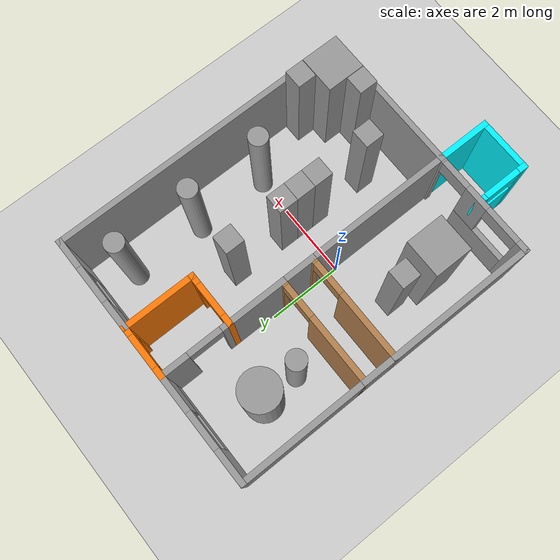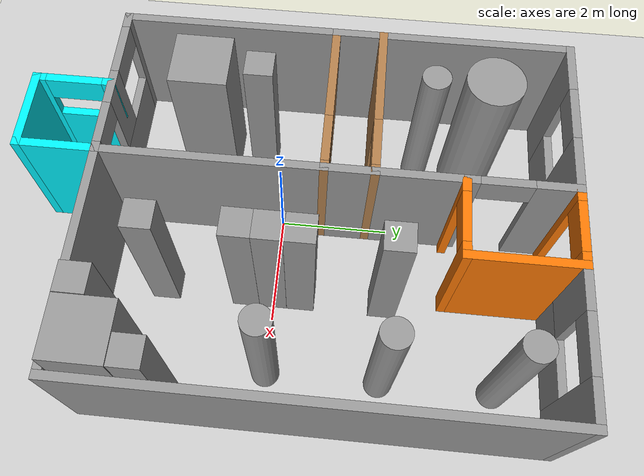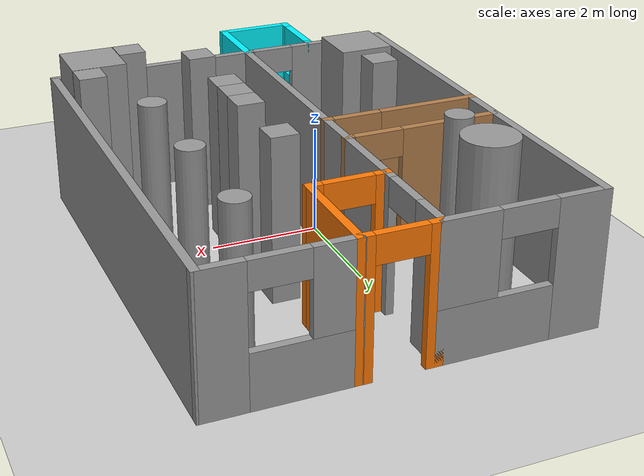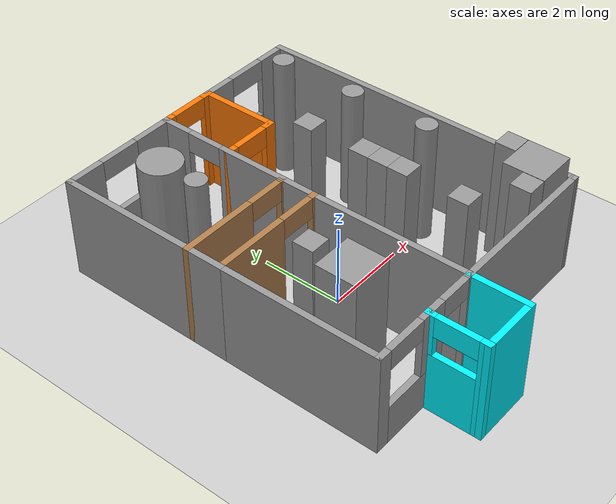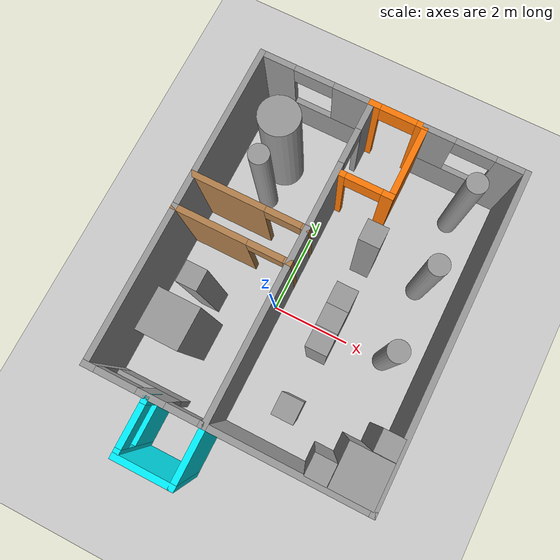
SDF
<sdf version="1.6">
 <world name="default">
  <plugin name="hello" filename="libhello.so"/>
  <light name="sun" type="directional">
   <pose>0 0 10 0 -0 0</pose>
   <diffuse>0.8 0.8 0.8 1</diffuse>
   <specular>0.2 0.2 0.2 1</specular>
   <attenuation>
    <range>1000</range>
    <constant>0.9</constant>
    <linear>0.01</linear>
    <quadratic>0.001</quadratic>
   </attenuation>
   <direction>-0.5 0.1 -0.9</direction>
  </light>
  <model name="ground_plane">
   <static>1</static>
   <link name="link">
    <collision name="collision">
     <geometry><plane><normal>0 0 1</normal><size>100 100</size></plane></geometry>
     <surface><friction><ode><mu>100</mu><mu2>50</mu2></ode></friction></surface>
    </collision>
    <visual name="visual">
     <cast_shadows>0</cast_shadows>
     <geometry><plane><normal>0 0 1</normal><size>100 100</size></plane></geometry>
     <material>
      <script><uri>file://media/materials/scripts/gazebo.material</uri><name>Gazebo/Grey</name></script>
     </material>
    </visual>
   </link>
  </model>
  <gravity>0 0 -9.8</gravity>
  <magnetic_field>6e-06 2.3e-05 -4.2e-05</magnetic_field>
  <atmosphere type="adiabatic"/>
  <physics name="default_physics" default="0" type="ode">
   <max_step_size>0.001</max_step_size>
   <real_time_factor>1</real_time_factor>
   <real_time_update_rate>1000</real_time_update_rate>
  </physics>
  <scene><ambient>0.4 0.4 0.4 1</ambient><background>0.7 0.7 0.7 1</background><shadows>1</shadows></scene>
  <spherical_coordinates>
   <surface_model>EARTH_WGS84</surface_model>
   <latitude_deg>0</latitude_deg>
   <longitude_deg>0</longitude_deg>
   <elevation>0</elevation>
   <heading_deg>0</heading_deg>
  </spherical_coordinates>
  <model name="cozyapato">
   <pose>0.612099 0.24558 0 0 -0 0</pose>
   <link name="Wall_100">
    <collision name="Wall_100_Collision">
     <geometry><box><size>1.5 0.15 2.5</size></box></geometry>
     <pose>0 0 1.25 0 -0 0</pose>
    </collision>
    <visual name="Wall_100_Visual">
     <pose>0 0 1.25 0 -0 0</pose>
     <geometry><box><size>1.5 0.15 2.5</size></box></geometry>
     <material>
      <script><uri>file://media/materials/scripts/gazebo.material</uri><name>Gazebo/Grey</name></script>
      <ambient>0 0.952941 1 1</ambient>
     </material>
     <meta><layer>0</layer></meta>
    </visual>
    <pose>-0.499933 -4.02501 0 0 0 -1.5708</pose>
   </link>
   <link name="Wall_101">
    <collision name="Wall_101_Collision">
     <geometry><box><size>1.5 0.15 2.5</size></box></geometry>
     <pose>0 0 1.25 0 -0 0</pose>
    </collision>
    <visual name="Wall_101_Visual">
     <pose>0 0 1.25 0 -0 0</pose>
     <geometry><box><size>1.5 0.15 2.5</size></box></geometry>
     <material>
      <script><uri>file://media/materials/scripts/gazebo.material</uri><name>Gazebo/Grey</name></script>
      <ambient>0 0.952941 1 1</ambient>
     </material>
     <meta><layer>0</layer></meta>
    </visual>
    <pose>-1.17493 -4.70001 0 0 -0 3.14159</pose>
   </link>
   <link name="Wall_102">
    <pose>-1.84993 -4.02501 0 0 -0 1.5708</pose>
    <visual name="Wall_102_Visual_0">
     <pose>-0.623422 0 1.25 0 -0 0</pose>
     <geometry><box><size>0.253156 0.15 2.5</size></box></geometry>
     <material>
      <script><uri>file://media/materials/scripts/gazebo.material</uri><name>Gazebo/Grey</name></script>
      <ambient>0 0.952941 1 1</ambient>
     </material>
     <meta><layer>0</layer></meta>
    </visual>
    <collision name="Wall_102_Collision_0">
     <geometry><box><size>0.253156 0.15 2.5</size></box></geometry>
     <pose>-0.623422 0 1.25 0 -0 0</pose>
    </collision>
    <visual name="Wall_102_Visual_1">
     <pose>0.126578 0 0.75 0 -0 0</pose>
     <geometry><box><size>1.24684 0.15 1.5</size></box></geometry>
     <material>
      <script><uri>file://media/materials/scripts/gazebo.material</uri><name>Gazebo/Grey</name></script>
      <ambient>0 0.952941 1 1</ambient>
     </material>
     <meta><layer>0</layer></meta>
    </visual>
    <collision name="Wall_102_Collision_1">
     <geometry><box><size>1.24684 0.15 1.5</size></box></geometry>
     <pose>0.126578 0 0.75 0 -0 0</pose>
    </collision>
    <visual name="Wall_102_Visual_2">
     <pose>0.626578 0 2 0 -0 0</pose>
     <geometry><box><size>0.246844 0.15 1</size></box></geometry>
     <material>
      <script><uri>file://media/materials/scripts/gazebo.material</uri><name>Gazebo/Grey</name></script>
      <ambient>0 0.952941 1 1</ambient>
     </material>
     <meta><layer>0</layer></meta>
    </visual>
    <collision name="Wall_102_Collision_2">
     <geometry><box><size>0.246844 0.15 1</size></box></geometry>
     <pose>0.626578 0 2 0 -0 0</pose>
    </collision>
    <visual name="Wall_102_Visual_3">
     <pose>0.003156 0 2.25 0 -0 0</pose>
     <geometry><box><size>1 0.15 0.5</size></box></geometry>
     <material>
      <script><uri>file://media/materials/scripts/gazebo.material</uri><name>Gazebo/Grey</name></script>
      <ambient>0 0.952941 1 1</ambient>
     </material>
     <meta><layer>0</layer></meta>
    </visual>
    <collision name="Wall_102_Collision_3">
     <geometry><box><size>1 0.15 0.5</size></box></geometry>
     <pose>0.003156 0 2.25 0 -0 0</pose>
    </collision>
   </link>
   <link name="Wall_108">
    <pose>0.175067 4.7 0 0 -0 0</pose>
    <visual name="Wall_108_Visual_0">
     <pose>-0.599463 0 1.25 0 -0 0</pose>
     <geometry><box><size>0.301074 0.15 2.5</size></box></geometry>
     <material>
      <script><uri>file://media/materials/scripts/gazebo.material</uri><name>Gazebo/Grey</name></script>
      <ambient>0.996078 0.47451 0.0196078 1</ambient>
     </material>
     <meta><layer>0</layer></meta>
    </visual>
    <collision name="Wall_108_Collision_0">
     <geometry><box><size>0.301074 0.15 2.5</size></box></geometry>
     <pose>-0.599463 0 1.25 0 -0 0</pose>
    </collision>
    <visual name="Wall_108_Visual_1">
     <pose>0.600537 0 1.25 0 -0 0</pose>
     <geometry><box><size>0.298926 0.15 2.5</size></box></geometry>
     <material>
      <script><uri>file://media/materials/scripts/gazebo.material</uri><name>Gazebo/Grey</name></script>
      <ambient>0.996078 0.47451 0.0196078 1</ambient>
     </material>
     <meta><layer>0</layer></meta>
    </visual>
    <collision name="Wall_108_Collision_1">
     <geometry><box><size>0.298926 0.15 2.5</size></box></geometry>
     <pose>0.600537 0 1.25 0 -0 0</pose>
    </collision>
    <visual name="Wall_108_Visual_2">
     <pose>0.001074 0 2.25 0 -0 0</pose>
     <geometry><box><size>0.9 0.15 0.5</size></box></geometry>
     <material>
      <script><uri>file://media/materials/scripts/gazebo.material</uri><name>Gazebo/Grey</name></script>
      <ambient>0.996078 0.47451 0.0196078 1</ambient>
     </material>
     <meta><layer>0</layer></meta>
    </visual>
    <collision name="Wall_108_Collision_2">
     <geometry><box><size>0.9 0.15 0.5</size></box></geometry>
     <pose>0.001074 0 2.25 0 -0 0</pose>
    </collision>
   </link>
   <link name="Wall_109">
    <collision name="Wall_109_Collision">
     <geometry><box><size>2 0.15 2.5</size></box></geometry>
     <pose>0 0 1.25 0 -0 0</pose>
    </collision>
    <visual name="Wall_109_Visual">
     <pose>0 0 1.25 0 -0 0</pose>
     <geometry><box><size>2 0.15 2.5</size></box></geometry>
     <material>
      <script><uri>file://media/materials/scripts/gazebo.material</uri><name>Gazebo/Grey</name></script>
      <ambient>0.996078 0.47451 0.0196078 1</ambient>
     </material>
     <meta><layer>0</layer></meta>
    </visual>
    <pose>0.850067 3.77499 0 0 0 -1.5708</pose>
   </link>
   <link name="Wall_110">
    <pose>0.175067 2.84999 0 0 -0 3.14159</pose>
    <visual name="Wall_110_Visual_0">
     <pose>-0.600722 0 1.25 0 -0 0</pose>
     <geometry><box><size>0.298555 0.15 2.5</size></box></geometry>
     <material>
      <script><uri>file://media/materials/scripts/gazebo.material</uri><name>Gazebo/Grey</name></script>
      <ambient>0.996078 0.47451 0.0196078 1</ambient>
     </material>
     <meta><layer>0</layer></meta>
    </visual>
    <collision name="Wall_110_Collision_0">
     <geometry><box><size>0.298555 0.15 2.5</size></box></geometry>
     <pose>-0.600722 0 1.25 0 -0 0</pose>
    </collision>
    <visual name="Wall_110_Visual_1">
     <pose>0.599278 0 1.25 0 -0 0</pose>
     <geometry><box><size>0.301445 0.15 2.5</size></box></geometry>
     <material>
      <script><uri>file://media/materials/scripts/gazebo.material</uri><name>Gazebo/Grey</name></script>
      <ambient>0.996078 0.47451 0.0196078 1</ambient>
     </material>
     <meta><layer>0</layer></meta>
    </visual>
    <collision name="Wall_110_Collision_1">
     <geometry><box><size>0.301445 0.15 2.5</size></box></geometry>
     <pose>0.599278 0 1.25 0 -0 0</pose>
    </collision>
    <visual name="Wall_110_Visual_2">
     <pose>-0.001445 0 2.25 0 -0 0</pose>
     <geometry><box><size>0.9 0.15 0.5</size></box></geometry>
     <material>
      <script><uri>file://media/materials/scripts/gazebo.material</uri><name>Gazebo/Grey</name></script>
      <ambient>0.996078 0.47451 0.0196078 1</ambient>
     </material>
     <meta><layer>0</layer></meta>
    </visual>
    <collision name="Wall_110_Collision_2">
     <geometry><box><size>0.9 0.15 0.5</size></box></geometry>
     <pose>-0.001445 0 2.25 0 -0 0</pose>
    </collision>
   </link>
   <link name="Wall_112">
    <collision name="Wall_112_Collision">
     <geometry><box><size>3.99985 0.15 2.5</size></box></geometry>
     <pose>0 0 1.25 0 -0 0</pose>
    </collision>
    <visual name="Wall_112_Visual">
     <pose>0 0 1.25 0 -0 0</pose>
     <geometry><box><size>3.99985 0.15 2.5</size></box></geometry>
     <material>
      <script><uri>file://media/materials/scripts/gazebo.material</uri><name>Gazebo/Grey</name></script>
      <ambient>1 1 1 1</ambient>
     </material>
     <meta><layer>0</layer></meta>
    </visual>
    <pose>1.42499 -3.3502 0 0 0 -0.000101</pose>
   </link>
   <link name="Wall_113">
    <collision name="Wall_113_Collision">
     <geometry><box><size>8.2 0.15 2.5</size></box></geometry>
     <pose>0 0 1.25 0 -0 0</pose>
    </collision>
    <visual name="Wall_113_Visual">
     <pose>0 0 1.25 0 -0 0</pose>
     <geometry><box><size>8.2 0.15 2.5</size></box></geometry>
     <material>
      <script><uri>file://media/materials/scripts/gazebo.material</uri><name>Gazebo/Grey</name></script>
      <ambient>1 1 1 1</ambient>
     </material>
     <meta><layer>0</layer></meta>
    </visual>
    <pose>3.34992 0.674605 0 0 -0 1.5708</pose>
   </link>
   <link name="Wall_115">
    <pose>2.09999 4.6998 0 0 -0 3.14144</pose>
    <visual name="Wall_115_Visual_0">
     <pose>-0.912211 0 1.25 0 -0 0</pose>
     <geometry><box><size>0.825433 0.15 2.5</size></box></geometry>
     <material>
      <script><uri>file://media/materials/scripts/gazebo.material</uri><name>Gazebo/Grey</name></script>
      <ambient>1 1 1 1</ambient>
     </material>
     <meta><layer>0</layer></meta>
    </visual>
    <collision name="Wall_115_Collision_0">
     <geometry><box><size>0.825433 0.15 2.5</size></box></geometry>
     <pose>-0.912211 0 1.25 0 -0 0</pose>
    </collision>
    <visual name="Wall_115_Visual_1">
     <pose>0.412716 0 0.5 0 -0 0</pose>
     <geometry><box><size>1.82442 0.15 1</size></box></geometry>
     <material>
      <script><uri>file://media/materials/scripts/gazebo.material</uri><name>Gazebo/Grey</name></script>
      <ambient>1 1 1 1</ambient>
     </material>
     <meta><layer>0</layer></meta>
    </visual>
    <collision name="Wall_115_Collision_1">
     <geometry><box><size>1.82442 0.15 1</size></box></geometry>
     <pose>0.412716 0 0.5 0 -0 0</pose>
    </collision>
    <visual name="Wall_115_Visual_2">
     <pose>0.912716 0 1.75 0 -0 0</pose>
     <geometry><box><size>0.824421 0.15 1.5</size></box></geometry>
     <material>
      <script><uri>file://media/materials/scripts/gazebo.material</uri><name>Gazebo/Grey</name></script>
      <ambient>1 1 1 1</ambient>
     </material>
     <meta><layer>0</layer></meta>
    </visual>
    <collision name="Wall_115_Collision_2">
     <geometry><box><size>0.824421 0.15 1.5</size></box></geometry>
     <pose>0.912716 0 1.75 0 -0 0</pose>
    </collision>
    <visual name="Wall_115_Visual_3">
     <pose>0.000506 0 2.25 0 -0 0</pose>
     <geometry><box><size>1 0.15 0.5</size></box></geometry>
     <material>
      <script><uri>file://media/materials/scripts/gazebo.material</uri><name>Gazebo/Grey</name></script>
      <ambient>1 1 1 1</ambient>
     </material>
     <meta><layer>0</layer></meta>
    </visual>
    <collision name="Wall_115_Collision_3">
     <geometry><box><size>1 0.15 0.5</size></box></geometry>
     <pose>0.000506 0 2.25 0 -0 0</pose>
    </collision>
   </link>
   <link name="Wall_87">
    <pose>-1.92493 4.7 0 0 -0 0</pose>
    <visual name="Wall_87_Visual_0">
     <pose>-1.02631 0 1.25 0 -0 0</pose>
     <geometry><box><size>0.947379 0.15 2.5</size></box></geometry>
     <material>
      <script><uri>file://media/materials/scripts/gazebo.material</uri><name>Gazebo/Grey</name></script>
      <ambient>1 1 1 1</ambient>
     </material>
     <meta><layer>0</layer></meta>
    </visual>
    <collision name="Wall_87_Collision_0">
     <geometry><box><size>0.947379 0.15 2.5</size></box></geometry>
     <pose>-1.02631 0 1.25 0 -0 0</pose>
    </collision>
    <visual name="Wall_87_Visual_1">
     <pose>0.473689 0 0.5 0 -0 0</pose>
     <geometry><box><size>2.05262 0.15 1</size></box></geometry>
     <material>
      <script><uri>file://media/materials/scripts/gazebo.material</uri><name>Gazebo/Grey</name></script>
      <ambient>1 1 1 1</ambient>
     </material>
     <meta><layer>0</layer></meta>
    </visual>
    <collision name="Wall_87_Collision_1">
     <geometry><box><size>2.05262 0.15 1</size></box></geometry>
     <pose>0.473689 0 0.5 0 -0 0</pose>
    </collision>
    <visual name="Wall_87_Visual_2">
     <pose>0.973689 0 1.75 0 -0 0</pose>
     <geometry><box><size>1.05262 0.15 1.5</size></box></geometry>
     <material>
      <script><uri>file://media/materials/scripts/gazebo.material</uri><name>Gazebo/Grey</name></script>
      <ambient>1 1 1 1</ambient>
     </material>
     <meta><layer>0</layer></meta>
    </visual>
    <collision name="Wall_87_Collision_2">
     <geometry><box><size>1.05262 0.15 1.5</size></box></geometry>
     <pose>0.973689 0 1.75 0 -0 0</pose>
    </collision>
    <visual name="Wall_87_Visual_3">
     <pose>-0.052621 0 2.25 0 -0 0</pose>
     <geometry><box><size>1 0.15 0.5</size></box></geometry>
     <material>
      <script><uri>file://media/materials/scripts/gazebo.material</uri><name>Gazebo/Grey</name></script>
      <ambient>1 1 1 1</ambient>
     </material>
     <meta><layer>0</layer></meta>
    </visual>
    <collision name="Wall_87_Collision_3">
     <geometry><box><size>1 0.15 0.5</size></box></geometry>
     <pose>-0.052621 0 2.25 0 -0 0</pose>
    </collision>
   </link>
   <link name="Wall_88">
    <pose>-0.499933 3.02499 0 0 0 -1.5708</pose>
    <visual name="Wall_88_Visual_0">
     <pose>-1.35034 0 1.25 0 -0 0</pose>
     <geometry><box><size>0.799327 0.15 2.5</size></box></geometry>
     <material>
      <script><uri>file://media/materials/scripts/gazebo.material</uri><name>Gazebo/Grey</name></script>
      <ambient>1 1 1 1</ambient>
     </material>
     <meta><layer>0</layer></meta>
    </visual>
    <collision name="Wall_88_Collision_0">
     <geometry><box><size>0.799327 0.15 2.5</size></box></geometry>
     <pose>-1.35034 0 1.25 0 -0 0</pose>
    </collision>
    <visual name="Wall_88_Visual_1">
     <pose>0.849663 0 1.25 0 -0 0</pose>
     <geometry><box><size>1.80067 0.15 2.5</size></box></geometry>
     <material>
      <script><uri>file://media/materials/scripts/gazebo.material</uri><name>Gazebo/Grey</name></script>
      <ambient>1 1 1 1</ambient>
     </material>
     <meta><layer>0</layer></meta>
    </visual>
    <collision name="Wall_88_Collision_1">
     <geometry><box><size>1.80067 0.15 2.5</size></box></geometry>
     <pose>0.849663 0 1.25 0 -0 0</pose>
    </collision>
    <visual name="Wall_88_Visual_2">
     <pose>-0.500673 0 2.25 0 -0 0</pose>
     <geometry><box><size>0.9 0.15 0.5</size></box></geometry>
     <material>
      <script><uri>file://media/materials/scripts/gazebo.material</uri><name>Gazebo/Grey</name></script>
      <ambient>1 1 1 1</ambient>
     </material>
     <meta><layer>0</layer></meta>
    </visual>
    <collision name="Wall_88_Collision_2">
     <geometry><box><size>0.9 0.15 0.5</size></box></geometry>
     <pose>-0.500673 0 2.25 0 -0 0</pose>
    </collision>
   </link>
   <link name="Wall_89">
    <pose>-1.92493 1.34999 0 0 -0 3.14159</pose>
    <visual name="Wall_89_Visual_0">
     <pose>-1.4003 0 1.25 0 -0 0</pose>
     <geometry><box><size>0.199399 0.15 2.5</size></box></geometry>
     <material>
      <script><uri>file://media/materials/scripts/gazebo.material</uri><name>Gazebo/Wood</name></script>
      <ambient>1 1 1 1</ambient>
     </material>
     <meta><layer>0</layer></meta>
    </visual>
    <collision name="Wall_89_Collision_0">
     <geometry><box><size>0.199399 0.15 2.5</size></box></geometry>
     <pose>-1.4003 0 1.25 0 -0 0</pose>
    </collision>
    <visual name="Wall_89_Visual_1">
     <pose>0.549699 0 1.25 0 -0 0</pose>
     <geometry><box><size>1.9006 0.15 2.5</size></box></geometry>
     <material>
      <script><uri>file://media/materials/scripts/gazebo.material</uri><name>Gazebo/Wood</name></script>
      <ambient>1 1 1 1</ambient>
     </material>
     <meta><layer>0</layer></meta>
    </visual>
    <collision name="Wall_89_Collision_1">
     <geometry><box><size>1.9006 0.15 2.5</size></box></geometry>
     <pose>0.549699 0 1.25 0 -0 0</pose>
    </collision>
    <visual name="Wall_89_Visual_2">
     <pose>-0.850601 0 2.25 0 -0 0</pose>
     <geometry><box><size>0.9 0.15 0.5</size></box></geometry>
     <material>
      <script><uri>file://media/materials/scripts/gazebo.material</uri><name>Gazebo/Wood</name></script>
      <ambient>1 1 1 1</ambient>
     </material>
     <meta><layer>0</layer></meta>
    </visual>
    <collision name="Wall_89_Collision_2">
     <geometry><box><size>0.9 0.15 0.5</size></box></geometry>
     <pose>-0.850601 0 2.25 0 -0 0</pose>
    </collision>
   </link>
   <link name="Wall_90">
    <collision name="Wall_90_Collision">
     <geometry><box><size>3.5 0.15 2.5</size></box></geometry>
     <pose>0 0 1.25 0 -0 0</pose>
    </collision>
    <visual name="Wall_90_Visual">
     <pose>0 0 1.25 0 -0 0</pose>
     <geometry><box><size>3.5 0.15 2.5</size></box></geometry>
     <material>
      <script><uri>file://media/materials/scripts/gazebo.material</uri><name>Gazebo/Grey</name></script>
      <ambient>1 1 1 1</ambient>
     </material>
     <meta><layer>0</layer></meta>
    </visual>
    <pose>-3.34993 3.02499 0 0 -0 1.5708</pose>
   </link>
   <link name="Wall_92">
    <collision name="Wall_92_Collision">
     <geometry><box><size>1 0.15 2.5</size></box></geometry>
     <pose>0 0 1.25 0 -0 0</pose>
    </collision>
    <visual name="Wall_92_Visual">
     <pose>0 0 1.25 0 -0 0</pose>
     <geometry><box><size>1 0.15 2.5</size></box></geometry>
     <material>
      <script><uri>file://media/materials/scripts/gazebo.material</uri><name>Gazebo/Grey</name></script>
      <ambient>1 1 1 1</ambient>
     </material>
     <meta><layer>0</layer></meta>
    </visual>
    <pose>-3.34993 0.924994 0 0 0 -1.5708</pose>
   </link>
   <link name="Wall_93">
    <pose>-1.92493 0.499994 0 0 -0 0</pose>
    <visual name="Wall_93_Visual_0">
     <pose>-0.551343 0 1.25 0 -0 0</pose>
     <geometry><box><size>1.89731 0.15 2.5</size></box></geometry>
     <material>
      <script><uri>file://media/materials/scripts/gazebo.material</uri><name>Gazebo/Wood</name></script>
      <ambient>1 1 1 1</ambient>
     </material>
     <meta><layer>0</layer></meta>
    </visual>
    <collision name="Wall_93_Collision_0">
     <geometry><box><size>1.89731 0.15 2.5</size></box></geometry>
     <pose>-0.551343 0 1.25 0 -0 0</pose>
    </collision>
    <visual name="Wall_93_Visual_1">
     <pose>1.39866 0 1.25 0 -0 0</pose>
     <geometry><box><size>0.202686 0.15 2.5</size></box></geometry>
     <material>
      <script><uri>file://media/materials/scripts/gazebo.material</uri><name>Gazebo/Wood</name></script>
      <ambient>1 1 1 1</ambient>
     </material>
     <meta><layer>0</layer></meta>
    </visual>
    <collision name="Wall_93_Collision_1">
     <geometry><box><size>0.202686 0.15 2.5</size></box></geometry>
     <pose>1.39866 0 1.25 0 -0 0</pose>
    </collision>
    <visual name="Wall_93_Visual_2">
     <pose>0.847314 0 2.25 0 -0 0</pose>
     <geometry><box><size>0.9 0.15 0.5</size></box></geometry>
     <material>
      <script><uri>file://media/materials/scripts/gazebo.material</uri><name>Gazebo/Wood</name></script>
      <ambient>1 1 1 1</ambient>
     </material>
     <meta><layer>0</layer></meta>
    </visual>
    <collision name="Wall_93_Collision_2">
     <geometry><box><size>0.9 0.15 0.5</size></box></geometry>
     <pose>0.847314 0 2.25 0 -0 0</pose>
    </collision>
   </link>
   <link name="Wall_94">
    <collision name="Wall_94_Collision">
     <geometry><box><size>1 0.15 2.5</size></box></geometry>
     <pose>0 0 1.25 0 -0 0</pose>
    </collision>
    <visual name="Wall_94_Visual">
     <pose>0 0 1.25 0 -0 0</pose>
     <geometry><box><size>1 0.15 2.5</size></box></geometry>
     <material>
      <script><uri>file://media/materials/scripts/gazebo.material</uri><name>Gazebo/Grey</name></script>
      <ambient>1 1 1 1</ambient>
     </material>
     <meta><layer>0</layer></meta>
    </visual>
    <pose>-0.499933 0.924994 0 0 -0 1.5708</pose>
   </link>
   <link name="Wall_96">
    <collision name="Wall_96_Collision">
     <geometry><box><size>4 0.15 2.5</size></box></geometry>
     <pose>0 0 1.25 0 -0 0</pose>
    </collision>
    <visual name="Wall_96_Visual">
     <pose>0 0 1.25 0 -0 0</pose>
     <geometry><box><size>4 0.15 2.5</size></box></geometry>
     <material>
      <script><uri>file://media/materials/scripts/gazebo.material</uri><name>Gazebo/Grey</name></script>
      <ambient>1 1 1 1</ambient>
     </material>
     <meta><layer>0</layer></meta>
    </visual>
    <pose>-3.34993 -1.42501 0 0 0 -1.5708</pose>
   </link>
   <link name="Wall_97">
    <pose>-1.92493 -3.35001 0 0 -0 0</pose>
    <visual name="Wall_97_Visual_0">
     <pose>-1.33807 0 1.25 0 -0 0</pose>
     <geometry><box><size>0.323858 0.15 2.5</size></box></geometry>
     <material>
      <script><uri>file://media/materials/scripts/gazebo.material</uri><name>Gazebo/Grey</name></script>
      <ambient>1 1 1 1</ambient>
     </material>
     <meta><layer>0</layer></meta>
    </visual>
    <collision name="Wall_97_Collision_0">
     <geometry><box><size>0.323858 0.15 2.5</size></box></geometry>
     <pose>-1.33807 0 1.25 0 -0 0</pose>
    </collision>
    <visual name="Wall_97_Visual_1">
     <pose>1.40031 0 1.25 0 -0 0</pose>
     <geometry><box><size>0.199375 0.15 2.5</size></box></geometry>
     <material>
      <script><uri>file://media/materials/scripts/gazebo.material</uri><name>Gazebo/Grey</name></script>
      <ambient>1 1 1 1</ambient>
     </material>
     <meta><layer>0</layer></meta>
    </visual>
    <collision name="Wall_97_Collision_1">
     <geometry><box><size>0.199375 0.15 2.5</size></box></geometry>
     <pose>1.40031 0 1.25 0 -0 0</pose>
    </collision>
    <visual name="Wall_97_Visual_2">
     <pose>-0.337758 0 0.5 0 -0 0</pose>
     <geometry><box><size>1.67677 0.15 1</size></box></geometry>
     <material>
      <script><uri>file://media/materials/scripts/gazebo.material</uri><name>Gazebo/Grey</name></script>
      <ambient>1 1 1 1</ambient>
     </material>
     <meta><layer>0</layer></meta>
    </visual>
    <collision name="Wall_97_Collision_2">
     <geometry><box><size>1.67677 0.15 1</size></box></geometry>
     <pose>-0.337758 0 0.5 0 -0 0</pose>
    </collision>
    <visual name="Wall_97_Visual_3">
     <pose>0.162242 0 1.75 0 -0 0</pose>
     <geometry><box><size>0.676767 0.15 1.5</size></box></geometry>
     <material>
      <script><uri>file://media/materials/scripts/gazebo.material</uri><name>Gazebo/Grey</name></script>
      <ambient>1 1 1 1</ambient>
     </material>
     <meta><layer>0</layer></meta>
    </visual>
    <collision name="Wall_97_Collision_3">
     <geometry><box><size>0.676767 0.15 1.5</size></box></geometry>
     <pose>0.162242 0 1.75 0 -0 0</pose>
    </collision>
    <visual name="Wall_97_Visual_4">
     <pose>-0.676142 0 2.25 0 -0 0</pose>
     <geometry><box><size>1 0.15 0.5</size></box></geometry>
     <material>
      <script><uri>file://media/materials/scripts/gazebo.material</uri><name>Gazebo/Grey</name></script>
      <ambient>1 1 1 1</ambient>
     </material>
     <meta><layer>0</layer></meta>
    </visual>
    <collision name="Wall_97_Collision_4">
     <geometry><box><size>1 0.15 0.5</size></box></geometry>
     <pose>-0.676142 0 2.25 0 -0 0</pose>
    </collision>
    <visual name="Wall_97_Visual_5">
     <pose>0.900625 0 2.25 0 -0 0</pose>
     <geometry><box><size>0.8 0.15 0.5</size></box></geometry>
     <material>
      <script><uri>file://media/materials/scripts/gazebo.material</uri><name>Gazebo/Grey</name></script>
      <ambient>1 1 1 1</ambient>
     </material>
     <meta><layer>0</layer></meta>
    </visual>
    <collision name="Wall_97_Collision_5">
     <geometry><box><size>0.8 0.15 0.5</size></box></geometry>
     <pose>0.900625 0 2.25 0 -0 0</pose>
    </collision>
   </link>
   <link name="Wall_98">
    <collision name="Wall_98_Collision">
     <geometry><box><size>4 0.15 2.5</size></box></geometry>
     <pose>0 0 1.25 0 -0 0</pose>
    </collision>
    <visual name="Wall_98_Visual">
     <pose>0 0 1.25 0 -0 0</pose>
     <geometry><box><size>4 0.15 2.5</size></box></geometry>
     <material>
      <script><uri>file://media/materials/scripts/gazebo.material</uri><name>Gazebo/Grey</name></script>
      <ambient>1 1 1 1</ambient>
     </material>
     <meta><layer>0</layer></meta>
    </visual>
    <pose>-0.499933 -1.42501 0 0 -0 1.5708</pose>
   </link>
   <static>1</static>
  </model>
  <model name="tall_unit_cylinder_2">
   <link name="link">
    <inertial>
     <mass>100</mass>
     <inertia><ixx>0.145833</ixx><ixy>0</ixy><ixz>0</ixz><iyy>0.145833</iyy><iyz>0</iyz><izz>0.125</izz></inertia>
    </inertial>
    <visual name="visual">
     <geometry><cylinder><radius>0.5</radius><length>3</length></cylinder></geometry>
     <material>
      <script><name>Gazebo/Grey</name><uri>file://media/materials/scripts/gazebo.material</uri></script>
      <shader type="pixel"><normal_map>__default__</normal_map></shader>
      <ambient>1 1 1 1</ambient>
      <diffuse>0.7 0.7 0.7 1</diffuse>
      <specular>0.01 0.01 0.01 1</specular>
      <emissive>0 0 0 1</emissive>
     </material>
    </visual>
    <collision name="collision">
     <geometry><cylinder><radius>0.5</radius><length>3</length></cylinder></geometry>
     <surface>
      <friction>
       <ode><mu>1</mu><mu2>1</mu2><fdir1>0 0 0</fdir1><slip1>0</slip1><slip2>0</slip2></ode>
       <torsional>
        <coefficient>1</coefficient>
        <patch_radius>0</patch_radius>
        <surface_radius>0</surface_radius>
        <use_patch_radius>1</use_patch_radius>
        <ode><slip>0</slip></ode>
       </torsional>
      </friction>
      <bounce><restitution_coefficient>0</restitution_coefficient><threshold>1e+06</threshold></bounce>
      <contact>
       <collide_without_contact>0</collide_without_contact>
       <collide_without_contact_bitmask>1</collide_without_contact_bitmask>
       <collide_bitmask>1</collide_bitmask>
       <ode>
        <soft_cfm>0</soft_cfm>
        <soft_erp>0.2</soft_erp>
        <kp>1e+13</kp>
        <kd>1</kd>
        <max_vel>0.01</max_vel>
        <min_depth>0</min_depth>
       </ode>
       <bullet>
        <split_impulse>1</split_impulse>
        <split_impulse_penetration_threshold>-0.01</split_impulse_penetration_threshold>
        <soft_cfm>0</soft_cfm>
        <soft_erp>0.2</soft_erp>
        <kp>1e+13</kp>
        <kd>1</kd>
       </bullet>
      </contact>
     </surface>
    </collision>
   </link>
   <static>0</static>
   <pose>-1.51036 3.49095 1.5 2e-06 -0 0.034338</pose>
  </model>
  <model name="tall_unit_box_2">
   <link name="link">
    <inertial>
     <mass>100</mass>
     <inertia>
      <ixx>0.166667</ixx>
      <ixy>0</ixy>
      <ixz>0</ixz>
      <iyy>0.166667</iyy>
      <iyz>0</iyz>
      <izz>0.166667</izz>
     </inertia>
    </inertial>
    <visual name="visual">
     <geometry><box><size>1 1 3</size></box></geometry>
     <material>
      <script><name>Gazebo/Grey</name><uri>file://media/materials/scripts/gazebo.material</uri></script>
      <shader type="pixel"><normal_map>__default__</normal_map></shader>
      <ambient>1 1 1 1</ambient>
      <diffuse>0.7 0.7 0.7 1</diffuse>
      <specular>0.01 0.01 0.01 1</specular>
      <emissive>0 0 0 1</emissive>
     </material>
    </visual>
    <collision name="collision">
     <geometry><box><size>1 1 3</size></box></geometry>
     <surface>
      <friction>
       <ode><mu>1</mu><mu2>1</mu2><fdir1>0 0 0</fdir1><slip1>0</slip1><slip2>0</slip2></ode>
       <torsional>
        <coefficient>1</coefficient>
        <patch_radius>0</patch_radius>
        <surface_radius>0</surface_radius>
        <use_patch_radius>1</use_patch_radius>
        <ode><slip>0</slip></ode>
       </torsional>
      </friction>
      <bounce><restitution_coefficient>0</restitution_coefficient><threshold>1e+06</threshold></bounce>
      <contact>
       <collide_without_contact>0</collide_without_contact>
       <collide_without_contact_bitmask>1</collide_without_contact_bitmask>
       <collide_bitmask>1</collide_bitmask>
       <ode>
        <soft_cfm>0</soft_cfm>
        <soft_erp>0.2</soft_erp>
        <kp>1e+13</kp>
        <kd>1</kd>
        <max_vel>0.01</max_vel>
        <min_depth>0</min_depth>
       </ode>
       <bullet>
        <split_impulse>1</split_impulse>
        <split_impulse_penetration_threshold>-0.01</split_impulse_penetration_threshold>
        <soft_cfm>0</soft_cfm>
        <soft_erp>0.2</soft_erp>
        <kp>1e+13</kp>
        <kd>1</kd>
       </bullet>
      </contact>
     </surface>
    </collision>
   </link>
   <static>0</static>
   <pose>-1.49818 -1.49715 1.49999 1.2e-05 -1e-06 -0.003328</pose>
  </model>
  <model name="tall_skinny_unit_box_2">
   <link name="link">
    <inertial>
     <mass>100</mass>
     <inertia>
      <ixx>0.166667</ixx>
      <ixy>0</ixy>
      <ixz>0</ixz>
      <iyy>0.166667</iyy>
      <iyz>0</iyz>
      <izz>0.166667</izz>
     </inertia>
    </inertial>
    <visual name="visual">
     <geometry><box><size>0.5 0.5 3</size></box></geometry>
     <material>
      <script><name>Gazebo/Grey</name><uri>file://media/materials/scripts/gazebo.material</uri></script>
      <shader type="pixel"><normal_map>__default__</normal_map></shader>
      <ambient>1 1 1 1</ambient>
      <diffuse>0.7 0.7 0.7 1</diffuse>
      <specular>0.01 0.01 0.01 1</specular>
      <emissive>0 0 0 1</emissive>
     </material>
    </visual>
    <collision name="collision">
     <geometry><box><size>0.5 0.5 3</size></box></geometry>
     <surface>
      <friction>
       <ode><mu>1</mu><mu2>1</mu2><fdir1>0 0 0</fdir1><slip1>0</slip1><slip2>0</slip2></ode>
       <torsional>
        <coefficient>1</coefficient>
        <patch_radius>0</patch_radius>
        <surface_radius>0</surface_radius>
        <use_patch_radius>1</use_patch_radius>
        <ode><slip>0</slip></ode>
       </torsional>
      </friction>
      <bounce><restitution_coefficient>0</restitution_coefficient><threshold>1e+06</threshold></bounce>
      <contact>
       <collide_without_contact>0</collide_without_contact>
       <collide_without_contact_bitmask>1</collide_without_contact_bitmask>
       <collide_bitmask>1</collide_bitmask>
       <ode>
        <soft_cfm>0</soft_cfm>
        <soft_erp>0.2</soft_erp>
        <kp>1e+13</kp>
        <kd>1</kd>
        <max_vel>0.01</max_vel>
        <min_depth>0</min_depth>
       </ode>
       <bullet>
        <split_impulse>1</split_impulse>
        <split_impulse_penetration_threshold>-0.01</split_impulse_penetration_threshold>
        <soft_cfm>0</soft_cfm>
        <soft_erp>0.2</soft_erp>
        <kp>1e+13</kp>
        <kd>1</kd>
       </bullet>
      </contact>
     </surface>
    </collision>
   </link>
   <static>0</static>
   <pose>-1.50035 -0.499735 1.5 -5e-06 1e-06 -0.000542</pose>
  </model>
  <model name="tall_unit_box_2_clone">
   <link name="link">
    <inertial>
     <mass>100</mass>
     <inertia>
      <ixx>0.166667</ixx>
      <ixy>0</ixy>
      <ixz>0</ixz>
      <iyy>0.166667</iyy>
      <iyz>0</iyz>
      <izz>0.166667</izz>
     </inertia>
    </inertial>
    <visual name="visual">
     <geometry><box><size>1 1 3</size></box></geometry>
     <material>
      <script><name>Gazebo/Grey</name><uri>file://media/materials/scripts/gazebo.material</uri></script>
      <shader type="pixel"><normal_map>__default__</normal_map></shader>
      <ambient>1 1 1 1</ambient>
      <diffuse>0.7 0.7 0.7 1</diffuse>
      <specular>0.01 0.01 0.01 1</specular>
      <emissive>0 0 0 1</emissive>
     </material>
    </visual>
    <collision name="collision">
     <geometry><box><size>1 1 3</size></box></geometry>
     <surface>
      <friction>
       <ode><mu>1</mu><mu2>1</mu2><fdir1>0 0 0</fdir1><slip1>0</slip1><slip2>0</slip2></ode>
       <torsional>
        <coefficient>1</coefficient>
        <patch_radius>0</patch_radius>
        <surface_radius>0</surface_radius>
        <use_patch_radius>1</use_patch_radius>
        <ode><slip>0</slip></ode>
       </torsional>
      </friction>
      <bounce><restitution_coefficient>0</restitution_coefficient><threshold>1e+06</threshold></bounce>
      <contact>
       <collide_without_contact>0</collide_without_contact>
       <collide_without_contact_bitmask>1</collide_without_contact_bitmask>
       <collide_bitmask>1</collide_bitmask>
       <ode>
        <soft_cfm>0</soft_cfm>
        <soft_erp>0.2</soft_erp>
        <kp>1e+13</kp>
        <kd>1</kd>
        <max_vel>0.01</max_vel>
        <min_depth>0</min_depth>
       </ode>
       <bullet>
        <split_impulse>1</split_impulse>
        <split_impulse_penetration_threshold>-0.01</split_impulse_penetration_threshold>
        <soft_cfm>0</soft_cfm>
        <soft_erp>0.2</soft_erp>
        <kp>1e+13</kp>
        <kd>1</kd>
       </bullet>
      </contact>
     </surface>
    </collision>
   </link>
   <static>0</static>
   <pose>3.37089 -2.49896 1.49999 1.2e-05 1e-06 -0.001628</pose>
  </model>
  <model name="tall_skinny_unit_box_2_clone">
   <link name="link">
    <inertial>
     <mass>100</mass>
     <inertia>
      <ixx>0.166667</ixx>
      <ixy>0</ixy>
      <ixz>0</ixz>
      <iyy>0.166667</iyy>
      <iyz>0</iyz>
      <izz>0.166667</izz>
     </inertia>
    </inertial>
    <visual name="visual">
     <geometry><box><size>0.5 0.5 3</size></box></geometry>
     <material>
      <script><name>Gazebo/Grey</name><uri>file://media/materials/scripts/gazebo.material</uri></script>
      <shader type="pixel"><normal_map>__default__</normal_map></shader>
      <ambient>1 1 1 1</ambient>
      <diffuse>0.7 0.7 0.7 1</diffuse>
      <specular>0.01 0.01 0.01 1</specular>
      <emissive>0 0 0 1</emissive>
     </material>
    </visual>
    <collision name="collision">
     <geometry><box><size>0.5 0.5 3</size></box></geometry>
     <surface>
      <friction>
       <ode><mu>1</mu><mu2>1</mu2><fdir1>0 0 0</fdir1><slip1>0</slip1><slip2>0</slip2></ode>
       <torsional>
        <coefficient>1</coefficient>
        <patch_radius>0</patch_radius>
        <surface_radius>0</surface_radius>
        <use_patch_radius>1</use_patch_radius>
        <ode><slip>0</slip></ode>
       </torsional>
      </friction>
      <bounce><restitution_coefficient>0</restitution_coefficient><threshold>1e+06</threshold></bounce>
      <contact>
       <collide_without_contact>0</collide_without_contact>
       <collide_without_contact_bitmask>1</collide_without_contact_bitmask>
       <collide_bitmask>1</collide_bitmask>
       <ode>
        <soft_cfm>0</soft_cfm>
        <soft_erp>0.2</soft_erp>
        <kp>1e+13</kp>
        <kd>1</kd>
        <max_vel>0.01</max_vel>
        <min_depth>0</min_depth>
       </ode>
       <bullet>
        <split_impulse>1</split_impulse>
        <split_impulse_penetration_threshold>-0.01</split_impulse_penetration_threshold>
        <soft_cfm>0</soft_cfm>
        <soft_erp>0.2</soft_erp>
        <kp>1e+13</kp>
        <kd>1</kd>
       </bullet>
      </contact>
     </surface>
    </collision>
   </link>
   <static>0</static>
   <pose>3.62023 -1.7403 1.5 0 -4e-06 -0.002416</pose>
  </model>
  <model name="tall_skinny_unit_box_2_clone_0">
   <link name="link">
    <inertial>
     <mass>100</mass>
     <inertia>
      <ixx>0.166667</ixx>
      <ixy>0</ixy>
      <ixz>0</ixz>
      <iyy>0.166667</iyy>
      <iyz>0</iyz>
      <izz>0.166667</izz>
     </inertia>
    </inertial>
    <visual name="visual">
     <geometry><box><size>0.5 0.5 3</size></box></geometry>
     <material>
      <script><name>Gazebo/Grey</name><uri>file://media/materials/scripts/gazebo.material</uri></script>
      <shader type="pixel"><normal_map>__default__</normal_map></shader>
      <ambient>1 1 1 1</ambient>
      <diffuse>0.7 0.7 0.7 1</diffuse>
      <specular>0.01 0.01 0.01 1</specular>
      <emissive>0 0 0 1</emissive>
     </material>
    </visual>
    <collision name="collision">
     <geometry><box><size>0.5 0.5 3</size></box></geometry>
     <surface>
      <friction>
       <ode><mu>1</mu><mu2>1</mu2><fdir1>0 0 0</fdir1><slip1>0</slip1><slip2>0</slip2></ode>
       <torsional>
        <coefficient>1</coefficient>
        <patch_radius>0</patch_radius>
        <surface_radius>0</surface_radius>
        <use_patch_radius>1</use_patch_radius>
        <ode><slip>0</slip></ode>
       </torsional>
      </friction>
      <bounce><restitution_coefficient>0</restitution_coefficient><threshold>1e+06</threshold></bounce>
      <contact>
       <collide_without_contact>0</collide_without_contact>
       <collide_without_contact_bitmask>1</collide_without_contact_bitmask>
       <collide_bitmask>1</collide_bitmask>
       <ode>
        <soft_cfm>0</soft_cfm>
        <soft_erp>0.2</soft_erp>
        <kp>1e+13</kp>
        <kd>1</kd>
        <max_vel>0.01</max_vel>
        <min_depth>0</min_depth>
       </ode>
       <bullet>
        <split_impulse>1</split_impulse>
        <split_impulse_penetration_threshold>-0.01</split_impulse_penetration_threshold>
        <soft_cfm>0</soft_cfm>
        <soft_erp>0.2</soft_erp>
        <kp>1e+13</kp>
        <kd>1</kd>
       </bullet>
      </contact>
     </surface>
    </collision>
   </link>
   <static>0</static>
   <pose>2.61011 -2.75 1.5 3e-06 1e-06 -0.002968</pose>
  </model>
  <model name="tall_skinny_unit_cylinder_2">
   <link name="link">
    <inertial>
     <mass>100</mass>
     <inertia><ixx>0.145833</ixx><ixy>0</ixy><ixz>0</ixz><iyy>0.145833</iyy><iyz>0</iyz><izz>0.125</izz></inertia>
    </inertial>
    <visual name="visual">
     <geometry><cylinder><radius>0.25</radius><length>3</length></cylinder></geometry>
     <material>
      <script><name>Gazebo/Grey</name><uri>file://media/materials/scripts/gazebo.material</uri></script>
      <shader type="pixel"><normal_map>__default__</normal_map></shader>
      <ambient>1 1 1 1</ambient>
      <diffuse>0.7 0.7 0.7 1</diffuse>
      <specular>0.01 0.01 0.01 1</specular>
      <emissive>0 0 0 1</emissive>
     </material>
    </visual>
    <collision name="collision">
     <geometry><cylinder><radius>0.25</radius><length>3</length></cylinder></geometry>
     <surface>
      <friction>
       <ode><mu>1</mu><mu2>1</mu2><fdir1>0 0 0</fdir1><slip1>0</slip1><slip2>0</slip2></ode>
       <torsional>
        <coefficient>1</coefficient>
        <patch_radius>0</patch_radius>
        <surface_radius>0</surface_radius>
        <use_patch_radius>1</use_patch_radius>
        <ode><slip>0</slip></ode>
       </torsional>
      </friction>
      <bounce><restitution_coefficient>0</restitution_coefficient><threshold>1e+06</threshold></bounce>
      <contact>
       <collide_without_contact>0</collide_without_contact>
       <collide_without_contact_bitmask>1</collide_without_contact_bitmask>
       <collide_bitmask>1</collide_bitmask>
       <ode>
        <soft_cfm>0</soft_cfm>
        <soft_erp>0.2</soft_erp>
        <kp>1e+13</kp>
        <kd>1</kd>
        <max_vel>0.01</max_vel>
        <min_depth>0</min_depth>
       </ode>
       <bullet>
        <split_impulse>1</split_impulse>
        <split_impulse_penetration_threshold>-0.01</split_impulse_penetration_threshold>
        <soft_cfm>0</soft_cfm>
        <soft_erp>0.2</soft_erp>
        <kp>1e+13</kp>
        <kd>1</kd>
       </bullet>
      </contact>
     </surface>
    </collision>
   </link>
   <static>0</static>
   <pose>3.00176 4.00078 1.5 8e-06 8e-06 -0.055326</pose>
  </model>
  <model name="tall_skinny_unit_cylinder_2_clone">
   <link name="link">
    <inertial>
     <mass>100</mass>
     <inertia><ixx>0.145833</ixx><ixy>0</ixy><ixz>0</ixz><iyy>0.145833</iyy><iyz>0</iyz><izz>0.125</izz></inertia>
    </inertial>
    <visual name="visual">
     <geometry><cylinder><radius>0.25</radius><length>3</length></cylinder></geometry>
     <material>
      <script><name>Gazebo/Grey</name><uri>file://media/materials/scripts/gazebo.material</uri></script>
      <shader type="pixel"><normal_map>__default__</normal_map></shader>
      <ambient>1 1 1 1</ambient>
      <diffuse>0.7 0.7 0.7 1</diffuse>
      <specular>0.01 0.01 0.01 1</specular>
      <emissive>0 0 0 1</emissive>
     </material>
    </visual>
    <collision name="collision">
     <geometry><cylinder><radius>0.25</radius><length>3</length></cylinder></geometry>
     <surface>
      <friction>
       <ode><mu>1</mu><mu2>1</mu2><fdir1>0 0 0</fdir1><slip1>0</slip1><slip2>0</slip2></ode>
       <torsional>
        <coefficient>1</coefficient>
        <patch_radius>0</patch_radius>
        <surface_radius>0</surface_radius>
        <use_patch_radius>1</use_patch_radius>
        <ode><slip>0</slip></ode>
       </torsional>
      </friction>
      <bounce><restitution_coefficient>0</restitution_coefficient><threshold>1e+06</threshold></bounce>
      <contact>
       <collide_without_contact>0</collide_without_contact>
       <collide_without_contact_bitmask>1</collide_without_contact_bitmask>
       <collide_bitmask>1</collide_bitmask>
       <ode>
        <soft_cfm>0</soft_cfm>
        <soft_erp>0.2</soft_erp>
        <kp>1e+13</kp>
        <kd>1</kd>
        <max_vel>0.01</max_vel>
        <min_depth>0</min_depth>
       </ode>
       <bullet>
        <split_impulse>1</split_impulse>
        <split_impulse_penetration_threshold>-0.01</split_impulse_penetration_threshold>
        <soft_cfm>0</soft_cfm>
        <soft_erp>0.2</soft_erp>
        <kp>1e+13</kp>
        <kd>1</kd>
       </bullet>
      </contact>
     </surface>
    </collision>
   </link>
   <static>0</static>
   <pose>3.00176 2.00078 1.5 8e-06 8e-06 -0.055326</pose>
  </model>
  <model name="tall_skinny_unit_cylinder_2_clone_clone">
   <link name="link">
    <inertial>
     <mass>100</mass>
     <inertia><ixx>0.145833</ixx><ixy>0</ixy><ixz>0</ixz><iyy>0.145833</iyy><iyz>0</iyz><izz>0.125</izz></inertia>
    </inertial>
    <visual name="visual">
     <geometry><cylinder><radius>0.25</radius><length>3</length></cylinder></geometry>
     <material>
      <script><name>Gazebo/Grey</name><uri>file://media/materials/scripts/gazebo.material</uri></script>
      <shader type="pixel"><normal_map>__default__</normal_map></shader>
      <ambient>1 1 1 1</ambient>
      <diffuse>0.7 0.7 0.7 1</diffuse>
      <specular>0.01 0.01 0.01 1</specular>
      <emissive>0 0 0 1</emissive>
     </material>
    </visual>
    <collision name="collision">
     <geometry><cylinder><radius>0.25</radius><length>3</length></cylinder></geometry>
     <surface>
      <friction>
       <ode><mu>1</mu><mu2>1</mu2><fdir1>0 0 0</fdir1><slip1>0</slip1><slip2>0</slip2></ode>
       <torsional>
        <coefficient>1</coefficient>
        <patch_radius>0</patch_radius>
        <surface_radius>0</surface_radius>
        <use_patch_radius>1</use_patch_radius>
        <ode><slip>0</slip></ode>
       </torsional>
      </friction>
      <bounce><restitution_coefficient>0</restitution_coefficient><threshold>1e+06</threshold></bounce>
      <contact>
       <collide_without_contact>0</collide_without_contact>
       <collide_without_contact_bitmask>1</collide_without_contact_bitmask>
       <collide_bitmask>1</collide_bitmask>
       <ode>
        <soft_cfm>0</soft_cfm>
        <soft_erp>0.2</soft_erp>
        <kp>1e+13</kp>
        <kd>1</kd>
        <max_vel>0.01</max_vel>
        <min_depth>0</min_depth>
       </ode>
       <bullet>
        <split_impulse>1</split_impulse>
        <split_impulse_penetration_threshold>-0.01</split_impulse_penetration_threshold>
        <soft_cfm>0</soft_cfm>
        <soft_erp>0.2</soft_erp>
        <kp>1e+13</kp>
        <kd>1</kd>
       </bullet>
      </contact>
     </surface>
    </collision>
   </link>
   <static>0</static>
   <pose>3.00176 0.000773 1.5 8e-06 8e-06 -0.055326</pose>
  </model>
  <model name="tall_skinny_unit_cylinder_2_clone_clone_0">
   <link name="link">
    <inertial>
     <mass>100</mass>
     <inertia><ixx>0.145833</ixx><ixy>0</ixy><ixz>0</ixz><iyy>0.145833</iyy><iyz>0</iyz><izz>0.125</izz></inertia>
    </inertial>
    <visual name="visual">
     <geometry><cylinder><radius>0.25</radius><length>3</length></cylinder></geometry>
     <material>
      <script><name>Gazebo/Grey</name><uri>file://media/materials/scripts/gazebo.material</uri></script>
      <shader type="pixel"><normal_map>__default__</normal_map></shader>
      <ambient>1 1 1 1</ambient>
      <diffuse>0.7 0.7 0.7 1</diffuse>
      <specular>0.01 0.01 0.01 1</specular>
      <emissive>0 0 0 1</emissive>
     </material>
    </visual>
    <collision name="collision">
     <geometry><cylinder><radius>0.25</radius><length>3</length></cylinder></geometry>
     <surface>
      <friction>
       <ode><mu>1</mu><mu2>1</mu2><fdir1>0 0 0</fdir1><slip1>0</slip1><slip2>0</slip2></ode>
       <torsional>
        <coefficient>1</coefficient>
        <patch_radius>0</patch_radius>
        <surface_radius>0</surface_radius>
        <use_patch_radius>1</use_patch_radius>
        <ode><slip>0</slip></ode>
       </torsional>
      </friction>
      <bounce><restitution_coefficient>0</restitution_coefficient><threshold>1e+06</threshold></bounce>
      <contact>
       <collide_without_contact>0</collide_without_contact>
       <collide_without_contact_bitmask>1</collide_without_contact_bitmask>
       <collide_bitmask>1</collide_bitmask>
       <ode>
        <soft_cfm>0</soft_cfm>
        <soft_erp>0.2</soft_erp>
        <kp>1e+13</kp>
        <kd>1</kd>
        <max_vel>0.01</max_vel>
        <min_depth>0</min_depth>
       </ode>
       <bullet>
        <split_impulse>1</split_impulse>
        <split_impulse_penetration_threshold>-0.01</split_impulse_penetration_threshold>
        <soft_cfm>0</soft_cfm>
        <soft_erp>0.2</soft_erp>
        <kp>1e+13</kp>
        <kd>1</kd>
       </bullet>
      </contact>
     </surface>
    </collision>
   </link>
   <static>0</static>
   <pose>-1.49806 2.50084 1.5 8e-06 8e-06 -0.061788</pose>
  </model>
  <model name="tall_skinny_unit_box_2_clone_0_clone_0">
   <link name="link">
    <inertial>
     <mass>100</mass>
     <inertia>
      <ixx>0.166667</ixx>
      <ixy>0</ixy>
      <ixz>0</ixz>
      <iyy>0.166667</iyy>
      <iyz>0</iyz>
      <izz>0.166667</izz>
     </inertia>
    </inertial>
    <visual name="visual">
     <geometry><box><size>0.5 0.5 3</size></box></geometry>
     <material>
      <script><name>Gazebo/Grey</name><uri>file://media/materials/scripts/gazebo.material</uri></script>
      <shader type="pixel"><normal_map>__default__</normal_map></shader>
      <ambient>1 1 1 1</ambient>
      <diffuse>0.7 0.7 0.7 1</diffuse>
      <specular>0.01 0.01 0.01 1</specular>
      <emissive>0 0 0 1</emissive>
     </material>
    </visual>
    <collision name="collision">
     <geometry><box><size>0.5 0.5 3</size></box></geometry>
     <surface>
      <friction>
       <ode><mu>1</mu><mu2>1</mu2><fdir1>0 0 0</fdir1><slip1>0</slip1><slip2>0</slip2></ode>
       <torsional>
        <coefficient>1</coefficient>
        <patch_radius>0</patch_radius>
        <surface_radius>0</surface_radius>
        <use_patch_radius>1</use_patch_radius>
        <ode><slip>0</slip></ode>
       </torsional>
      </friction>
      <bounce><restitution_coefficient>0</restitution_coefficient><threshold>1e+06</threshold></bounce>
      <contact>
       <collide_without_contact>0</collide_without_contact>
       <collide_without_contact_bitmask>1</collide_without_contact_bitmask>
       <collide_bitmask>1</collide_bitmask>
       <ode>
        <soft_cfm>0</soft_cfm>
        <soft_erp>0.2</soft_erp>
        <kp>1e+13</kp>
        <kd>1</kd>
        <max_vel>0.01</max_vel>
        <min_depth>0</min_depth>
       </ode>
       <bullet>
        <split_impulse>1</split_impulse>
        <split_impulse_penetration_threshold>-0.01</split_impulse_penetration_threshold>
        <soft_cfm>0</soft_cfm>
        <soft_erp>0.2</soft_erp>
        <kp>1e+13</kp>
        <kd>1</kd>
       </bullet>
      </contact>
     </surface>
    </collision>
   </link>
   <static>0</static>
   <pose>1.49964 -0.000159 1.5 -1e-06 -2e-06 -0.002118</pose>
  </model>
  <model name="tall_skinny_unit_box_2_clone_0_clone_2">
   <link name="link">
    <inertial>
     <mass>100</mass>
     <inertia>
      <ixx>0.166667</ixx>
      <ixy>0</ixy>
      <ixz>0</ixz>
      <iyy>0.166667</iyy>
      <iyz>0</iyz>
      <izz>0.166667</izz>
     </inertia>
    </inertial>
    <visual name="visual">
     <geometry><box><size>0.5 0.5 3</size></box></geometry>
     <material>
      <script><name>Gazebo/Grey</name><uri>file://media/materials/scripts/gazebo.material</uri></script>
      <shader type="pixel"><normal_map>__default__</normal_map></shader>
      <ambient>1 1 1 1</ambient>
      <diffuse>0.7 0.7 0.7 1</diffuse>
      <specular>0.01 0.01 0.01 1</specular>
      <emissive>0 0 0 1</emissive>
     </material>
    </visual>
    <collision name="collision">
     <geometry><box><size>0.5 0.5 3</size></box></geometry>
     <surface>
      <friction>
       <ode><mu>1</mu><mu2>1</mu2><fdir1>0 0 0</fdir1><slip1>0</slip1><slip2>0</slip2></ode>
       <torsional>
        <coefficient>1</coefficient>
        <patch_radius>0</patch_radius>
        <surface_radius>0</surface_radius>
        <use_patch_radius>1</use_patch_radius>
        <ode><slip>0</slip></ode>
       </torsional>
      </friction>
      <bounce><restitution_coefficient>0</restitution_coefficient><threshold>1e+06</threshold></bounce>
      <contact>
       <collide_without_contact>0</collide_without_contact>
       <collide_without_contact_bitmask>1</collide_without_contact_bitmask>
       <collide_bitmask>1</collide_bitmask>
       <ode>
        <soft_cfm>0</soft_cfm>
        <soft_erp>0.2</soft_erp>
        <kp>1e+13</kp>
        <kd>1</kd>
        <max_vel>0.01</max_vel>
        <min_depth>0</min_depth>
       </ode>
       <bullet>
        <split_impulse>1</split_impulse>
        <split_impulse_penetration_threshold>-0.01</split_impulse_penetration_threshold>
        <soft_cfm>0</soft_cfm>
        <soft_erp>0.2</soft_erp>
        <kp>1e+13</kp>
        <kd>1</kd>
       </bullet>
      </contact>
     </surface>
    </collision>
   </link>
   <static>0</static>
   <pose>1.50068 0.500276 1.5 0 0 -0.001474</pose>
  </model>
  <model name="tall_skinny_unit_box_2_clone_0_clone_3">
   <link name="link">
    <inertial>
     <mass>100</mass>
     <inertia>
      <ixx>0.166667</ixx>
      <ixy>0</ixy>
      <ixz>0</ixz>
      <iyy>0.166667</iyy>
      <iyz>0</iyz>
      <izz>0.166667</izz>
     </inertia>
    </inertial>
    <visual name="visual">
     <geometry><box><size>0.5 0.5 3</size></box></geometry>
     <material>
      <script><name>Gazebo/Grey</name><uri>file://media/materials/scripts/gazebo.material</uri></script>
      <shader type="pixel"><normal_map>__default__</normal_map></shader>
      <ambient>1 1 1 1</ambient>
      <diffuse>0.7 0.7 0.7 1</diffuse>
      <specular>0.01 0.01 0.01 1</specular>
      <emissive>0 0 0 1</emissive>
     </material>
    </visual>
    <collision name="collision">
     <geometry><box><size>0.5 0.5 3</size></box></geometry>
     <surface>
      <friction>
       <ode><mu>1</mu><mu2>1</mu2><fdir1>0 0 0</fdir1><slip1>0</slip1><slip2>0</slip2></ode>
       <torsional>
        <coefficient>1</coefficient>
        <patch_radius>0</patch_radius>
        <surface_radius>0</surface_radius>
        <use_patch_radius>1</use_patch_radius>
        <ode><slip>0</slip></ode>
       </torsional>
      </friction>
      <bounce><restitution_coefficient>0</restitution_coefficient><threshold>1e+06</threshold></bounce>
      <contact>
       <collide_without_contact>0</collide_without_contact>
       <collide_without_contact_bitmask>1</collide_without_contact_bitmask>
       <collide_bitmask>1</collide_bitmask>
       <ode>
        <soft_cfm>0</soft_cfm>
        <soft_erp>0.2</soft_erp>
        <kp>1e+13</kp>
        <kd>1</kd>
        <max_vel>0.01</max_vel>
        <min_depth>0</min_depth>
       </ode>
       <bullet>
        <split_impulse>1</split_impulse>
        <split_impulse_penetration_threshold>-0.01</split_impulse_penetration_threshold>
        <soft_cfm>0</soft_cfm>
        <soft_erp>0.2</soft_erp>
        <kp>1e+13</kp>
        <kd>1</kd>
       </bullet>
      </contact>
     </surface>
    </collision>
   </link>
   <static>0</static>
   <pose>1.49951 -0.500263 1.5 -2e-06 0 -0.002136</pose>
  </model>
  <plugin name="collision_map_creator" filename="libcollision_map_creator.so"/>
  <model name="tall_skinny_unit_box_2_clone_0_clone_0_clone">
   <link name="link">
    <inertial>
     <mass>100</mass>
     <inertia>
      <ixx>0.166667</ixx>
      <ixy>0</ixy>
      <ixz>0</ixz>
      <iyy>0.166667</iyy>
      <iyz>0</iyz>
      <izz>0.166667</izz>
     </inertia>
    </inertial>
    <visual name="visual">
     <geometry><box><size>0.5 0.5 3</size></box></geometry>
     <material>
      <script><name>Gazebo/Grey</name><uri>file://media/materials/scripts/gazebo.material</uri></script>
      <shader type="pixel"><normal_map>__default__</normal_map></shader>
      <ambient>1 1 1 1</ambient>
      <diffuse>0.7 0.7 0.7 1</diffuse>
      <specular>0.01 0.01 0.01 1</specular>
      <emissive>0 0 0 1</emissive>
     </material>
    </visual>
    <collision name="collision">
     <geometry><box><size>0.5 0.5 3</size></box></geometry>
     <surface>
      <friction>
       <ode><mu>1</mu><mu2>1</mu2><fdir1>0 0 0</fdir1><slip1>0</slip1><slip2>0</slip2></ode>
       <torsional>
        <coefficient>1</coefficient>
        <patch_radius>0</patch_radius>
        <surface_radius>0</surface_radius>
        <use_patch_radius>1</use_patch_radius>
        <ode><slip>0</slip></ode>
       </torsional>
      </friction>
      <bounce><restitution_coefficient>0</restitution_coefficient><threshold>1e+06</threshold></bounce>
      <contact>
       <collide_without_contact>0</collide_without_contact>
       <collide_without_contact_bitmask>1</collide_without_contact_bitmask>
       <collide_bitmask>1</collide_bitmask>
       <ode>
        <soft_cfm>0</soft_cfm>
        <soft_erp>0.2</soft_erp>
        <kp>1e+13</kp>
        <kd>1</kd>
        <max_vel>0.01</max_vel>
        <min_depth>0</min_depth>
       </ode>
       <bullet>
        <split_impulse>1</split_impulse>
        <split_impulse_penetration_threshold>-0.01</split_impulse_penetration_threshold>
        <soft_cfm>0</soft_cfm>
        <soft_erp>0.2</soft_erp>
        <kp>1e+13</kp>
        <kd>1</kd>
       </bullet>
      </contact>
     </surface>
    </collision>
   </link>
   <static>0</static>
   <pose>1.49979 2.00017 1.5 3e-06 1e-06 0.000992</pose>
  </model>
  <model name="tall_skinny_unit_box_2_clone_0_clone_0_clone_0">
   <link name="link">
    <inertial>
     <mass>100</mass>
     <inertia>
      <ixx>0.166667</ixx>
      <ixy>0</ixy>
      <ixz>0</ixz>
      <iyy>0.166667</iyy>
      <iyz>0</iyz>
      <izz>0.166667</izz>
     </inertia>
    </inertial>
    <visual name="visual">
     <geometry><box><size>0.5 0.5 3</size></box></geometry>
     <material>
      <script><name>Gazebo/Grey</name><uri>file://media/materials/scripts/gazebo.material</uri></script>
      <shader type="pixel"><normal_map>__default__</normal_map></shader>
      <ambient>1 1 1 1</ambient>
      <diffuse>0.7 0.7 0.7 1</diffuse>
      <specular>0.01 0.01 0.01 1</specular>
      <emissive>0 0 0 1</emissive>
     </material>
    </visual>
    <collision name="collision">
     <geometry><box><size>0.5 0.5 3</size></box></geometry>
     <surface>
      <friction>
       <ode><mu>1</mu><mu2>1</mu2><fdir1>0 0 0</fdir1><slip1>0</slip1><slip2>0</slip2></ode>
       <torsional>
        <coefficient>1</coefficient>
        <patch_radius>0</patch_radius>
        <surface_radius>0</surface_radius>
        <use_patch_radius>1</use_patch_radius>
        <ode><slip>0</slip></ode>
       </torsional>
      </friction>
      <bounce><restitution_coefficient>0</restitution_coefficient><threshold>1e+06</threshold></bounce>
      <contact>
       <collide_without_contact>0</collide_without_contact>
       <collide_without_contact_bitmask>1</collide_without_contact_bitmask>
       <collide_bitmask>1</collide_bitmask>
       <ode>
        <soft_cfm>0</soft_cfm>
        <soft_erp>0.2</soft_erp>
        <kp>1e+13</kp>
        <kd>1</kd>
        <max_vel>0.01</max_vel>
        <min_depth>0</min_depth>
       </ode>
       <bullet>
        <split_impulse>1</split_impulse>
        <split_impulse_penetration_threshold>-0.01</split_impulse_penetration_threshold>
        <soft_cfm>0</soft_cfm>
        <soft_erp>0.2</soft_erp>
        <kp>1e+13</kp>
        <kd>1</kd>
       </bullet>
      </contact>
     </surface>
    </collision>
   </link>
   <static>0</static>
   <pose>1.50013 -2 1.5 4e-06 1e-06 0.002196</pose>
  </model>
 </world>
</sdf>
